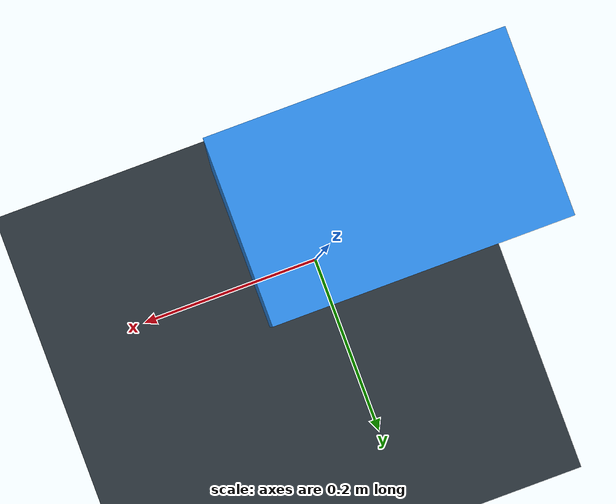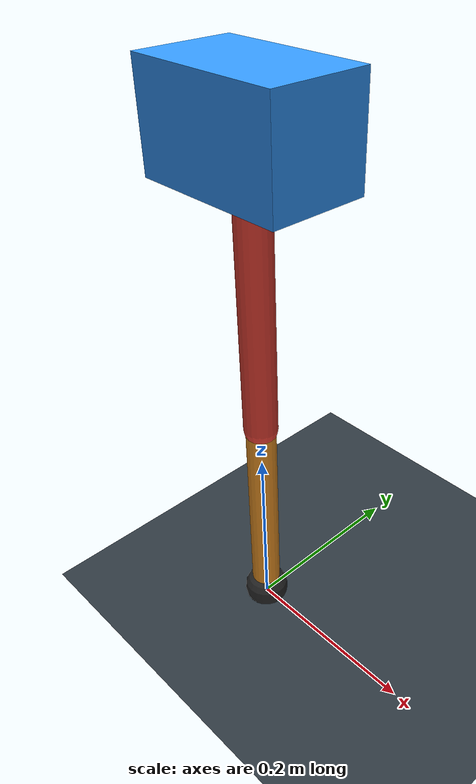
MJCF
<mujoco model="single_axis_two_bar">
  <compiler angle="radian" inertiafromgeom="true"/>
  <option timestep="0.001" integrator="implicitfast" gravity="0 0 -9.81"/>
  <default>
    <joint damping="0.08"/>
    <geom friction="1.2 0.01 0.0001" condim="3"/>
  </default>
  <worldbody>
    <geom name="floor" type="plane" size="5 5 0.1" rgba="0.18 0.22 0.25 1"/>
    <body name="carriage" pos="0 0 0.5491062040112304">
      <joint name="pole_slide" type="slide" axis="0 0 1"/>
      <geom name="payload" type="box" size="0.08 0.05 0.05" mass="2.7666566261761805" rgba="0.2 0.6 1 1"/>
      <body name="thigh" pos="0 0 0">
        <joint name="hip" type="hinge" axis="0 1 0"/>
        <geom name="thigh_link" type="capsule" fromto="0 0 0 0 0 -0.3033500419717951" size="0.018" mass="0.21614091332205257" rgba="0.9 0.25 0.2 1"/>
        <body name="shank" pos="0 0 -0.3033500419717951">
          <joint name="knee" type="hinge" axis="0 1 0"/>
          <geom name="shank_link" type="capsule" fromto="0 0 0 0 0 -0.2369656322665868" size="0.016" mass="0.16884114421451066" rgba="0.95 0.6 0.15 1"/>
          <geom name="foot" type="sphere" pos="0 0 -0.2369656322665868" size="0.025" mass="0.03" rgba="0.15 0.15 0.15 1"/>
          <site name="toe" pos="0 0 -0.2369656322665868" size="0.008"/>
        </body>
      </body>
    </body>
  </worldbody>
  <actuator>
    <motor name="hip_motor" joint="hip" ctrlrange="-18.212902493395184 18.212902493395184"/>
    <motor name="knee_motor" joint="knee" ctrlrange="-55.199245205155165 55.199245205155165"/>
  </actuator>
</mujoco>
